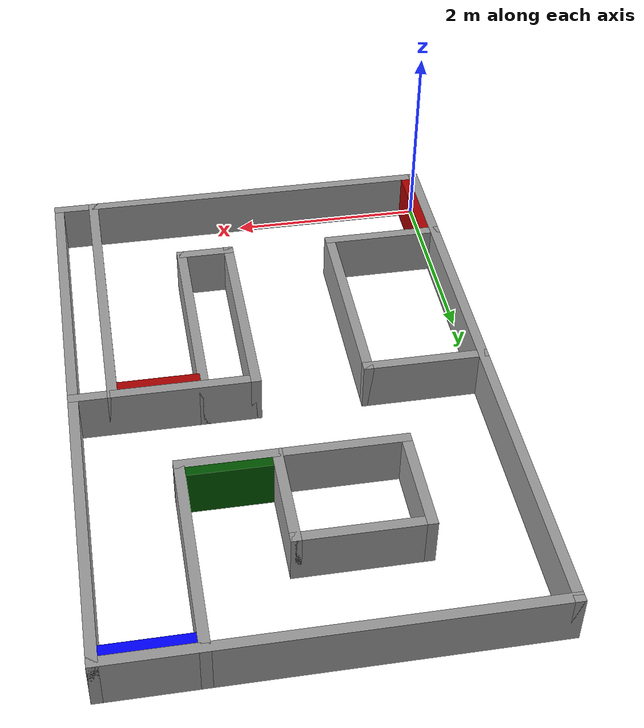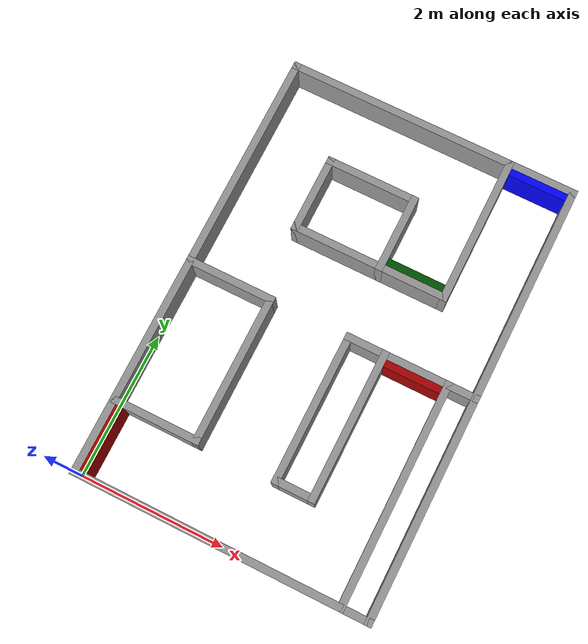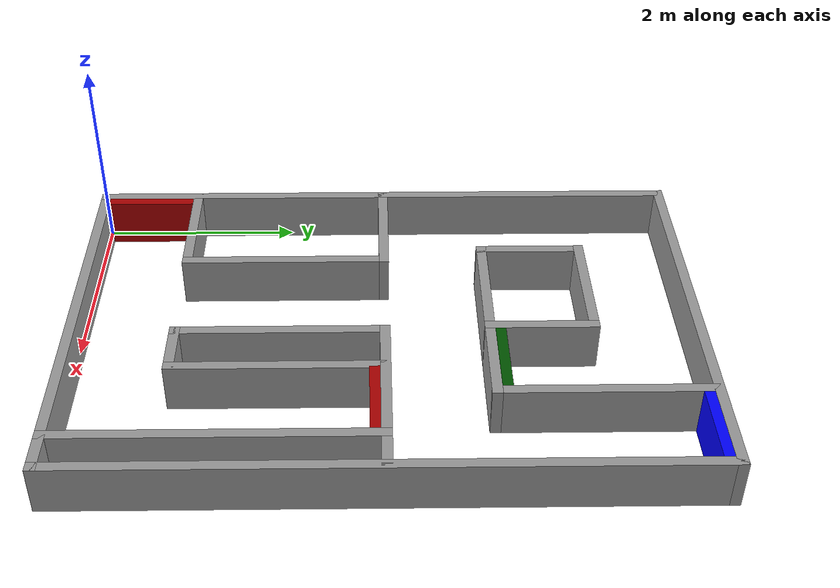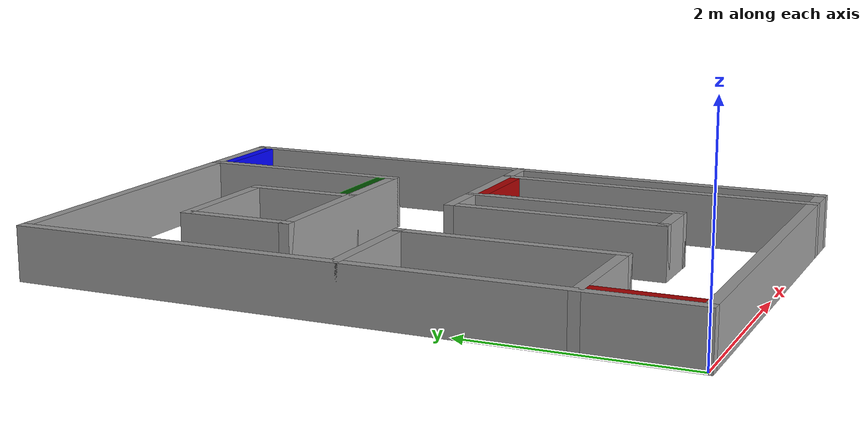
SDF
<?xml version='1.0'?>
<sdf version='1.6'>
  <model name='Bot_Map_2'>
    <pose frame=''>2 3 0 0 -0 0</pose>
    <link name='Wall_103'>
      <collision name='Wall_103_Collision'>
        <geometry>
          <box>
            <size>1.25 0.1 0.5</size>
          </box>
        </geometry>
        <pose frame=''>0 0 0.25 0 -0 0</pose>
      </collision>
      <visual name='Wall_103_Visual'>
        <pose frame=''>0 0 0.25 0 -0 0</pose>
        <geometry>
          <box>
            <size>1.25 0.1 0.5</size>
          </box>
        </geometry>
        <material>
          <script>
            <uri>file://media/materials/scripts/gazebo.material</uri>
            <name>Gazebo/Grey</name>
          </script>
          <ambient>0 0 0 1</ambient>
        </material>
        <meta>
          <layer>0</layer>
        </meta>
      </visual>
      <pose frame=''>-1.425 0 0 0 -0 0</pose>
    </link>
    <link name='Wall_105'>
      <collision name='Wall_105_Collision'>
        <geometry>
          <box>
            <size>1.1 0.1 0.5</size>
          </box>
        </geometry>
        <pose frame=''>0 0 0.25 0 -0 0</pose>
      </collision>
      <visual name='Wall_105_Visual'>
        <pose frame=''>0 0 0.25 0 -0 0</pose>
        <geometry>
          <box>
            <size>1.1 0.1 0.5</size>
          </box>
        </geometry>
        <material>
          <script>
            <uri>file://media/materials/scripts/gazebo.material</uri>
            <name>Gazebo/Grey</name>
          </script>
          <ambient>0 0 0 1</ambient>
        </material>
        <meta>
          <layer>0</layer>
        </meta>
      </visual>
      <pose frame=''>0.2 1.5 0 0 0 -1.5708</pose>
    </link>
    <link name='Wall_107'>
      <collision name='Wall_107_Collision'>
        <geometry>
          <box>
            <size>1.85 0.1 0.5</size>
          </box>
        </geometry>
        <pose frame=''>0 0 0.25 0 -0 0</pose>
      </collision>
      <visual name='Wall_107_Visual'>
        <pose frame=''>0 0 0.25 0 -0 0</pose>
        <geometry>
          <box>
            <size>1.85 0.1 0.5</size>
          </box>
        </geometry>
        <material>
          <script>
            <uri>file://media/materials/scripts/gazebo.material</uri>
            <name>Gazebo/Grey</name>
          </script>
          <ambient>1 1 1 1</ambient>
        </material>
        <meta>
          <layer>0</layer>
        </meta>
      </visual>
      <pose frame=''>1.125 0 0 0 -0 0</pose>
    </link>
    <link name='Wall_109'>
      <collision name='Wall_109_Collision'>
        <geometry>
          <box>
            <size>2.1 0.1 0.5</size>
          </box>
        </geometry>
        <pose frame=''>0 0 0.25 0 -0 0</pose>
      </collision>
      <visual name='Wall_109_Visual'>
        <pose frame=''>0 0 0.25 0 -0 0</pose>
        <geometry>
          <box>
            <size>2.1 0.1 0.5</size>
          </box>
        </geometry>
        <material>
          <script>
            <uri>file://media/materials/scripts/gazebo.material</uri>
            <name>Gazebo/Grey</name>
          </script>
          <ambient>0 0 0 1</ambient>
        </material>
        <meta>
          <layer>0</layer>
        </meta>
      </visual>
      <pose frame=''>0.25 -1 0 0 0 -1.5708</pose>
    </link>
    <link name='Wall_114'>
      <collision name='Wall_114_Collision'>
        <geometry>
          <box>
            <size>3.1 0.1 0.5</size>
          </box>
        </geometry>
        <pose frame=''>0 0 0.25 0 -0 0</pose>
      </collision>
      <visual name='Wall_114_Visual'>
        <pose frame=''>0 0 0.25 0 -0 0</pose>
        <geometry>
          <box>
            <size>3.1 0.1 0.5</size>
          </box>
        </geometry>
        <material>
          <script>
            <uri>file://media/materials/scripts/gazebo.material</uri>
            <name>Gazebo/Grey</name>
          </script>
          <ambient>0 0 0 1</ambient>
        </material>
        <meta>
          <layer>0</layer>
        </meta>
      </visual>
      <pose frame=''>1.625 -1.5 0 0 -0 1.5708</pose>
    </link>
    <link name='Wall_117'>
      <collision name='Wall_117_Collision'>
        <geometry>
          <box>
            <size>2.1 0.1 0.5</size>
          </box>
        </geometry>
        <pose frame=''>0 0 0.25 0 -0 0</pose>
      </collision>
      <visual name='Wall_117_Visual'>
        <pose frame=''>0 0 0.25 0 -0 0</pose>
        <geometry>
          <box>
            <size>2.1 0.1 0.5</size>
          </box>
        </geometry>
        <material>
          <script>
            <uri>file://media/materials/scripts/gazebo.material</uri>
            <name>Gazebo/Grey</name>
          </script>
          <ambient>0 0 0 1</ambient>
        </material>
        <meta>
          <layer>0</layer>
        </meta>
      </visual>
      <pose frame=''>0.75 -1 0 0 -0 1.5708</pose>
    </link>
    <link name='Wall_119'>
      <collision name='Wall_119_Collision'>
        <geometry>
          <box>
            <size>0.575 0.1 0.5</size>
          </box>
        </geometry>
        <pose frame=''>0 0 0.25 0 -0 0</pose>
      </collision>
      <visual name='Wall_119_Visual'>
        <pose frame=''>0 0 0.25 0 -0 0</pose>
        <geometry>
          <box>
            <size>0.575 0.1 0.5</size>
          </box>
        </geometry>
        <material>
          <script>
            <uri>file://media/materials/scripts/gazebo.material</uri>
            <name>Gazebo/Grey</name>
          </script>
          <ambient>0 0 0 1</ambient>
        </material>
        <meta>
          <layer>0</layer>
        </meta>
      </visual>
      <pose frame=''>0.4875 -2 0 0 -0 0</pose>
    </link>
    <link name='Wall_44'>
      <collision name='Wall_44_Collision'>
        <geometry>
          <box>
            <size>6.1 0.1 0.5</size>
          </box>
        </geometry>
        <pose frame=''>0 0 0.25 0 -0 0</pose>
      </collision>
      <visual name='Wall_44_Visual'>
        <pose frame=''>0 0 0.25 0 -0 0</pose>
        <geometry>
          <box>
            <size>6.1 0.1 0.5</size>
          </box>
        </geometry>
        <material>
          <script>
            <uri>file://media/materials/scripts/gazebo.material</uri>
            <name>Gazebo/Grey</name>
          </script>
          <ambient>0 0 0 1</ambient>
        </material>
        <meta>
          <layer>0</layer>
        </meta>
      </visual>
      <pose frame=''>-2 0 0 0 -0 1.5708</pose>
    </link>
    <link name='Wall_50'>
      <collision name='Wall_50_Collision'>
        <geometry>
          <box>
            <size>1.25 0.1 0.5</size>
          </box>
        </geometry>
        <pose frame=''>0 0 0.25 0 -0 0</pose>
      </collision>
      <visual name='Wall_50_Visual'>
        <pose frame=''>0 0 0.25 0 -0 0</pose>
        <geometry>
          <box>
            <size>1.25 0.1 0.5</size>
          </box>
        </geometry>
        <material>
          <script>
            <uri>file://media/materials/scripts/gazebo.material</uri>
            <name>Gazebo/Grey</name>
          </script>
          <ambient>0 0 0 1</ambient>
        </material>
        <meta>
          <layer>0</layer>
        </meta>
      </visual>
      <pose frame=''>-1.425 -2 0 0 -0 0</pose>
    </link>
    <link name='Wall_56'>
      <collision name='Wall_56_Collision'>
        <geometry>
          <box>
            <size>2.1 0.1 0.5</size>
          </box>
        </geometry>
        <pose frame=''>0 0 0.25 0 -0 0</pose>
      </collision>
      <visual name='Wall_56_Visual'>
        <pose frame=''>0 0 0.25 0 -0 0</pose>
        <geometry>
          <box>
            <size>2.1 0.1 0.5</size>
          </box>
        </geometry>
        <material>
          <script>
            <uri>file://media/materials/scripts/gazebo.material</uri>
            <name>Gazebo/Grey</name>
          </script>
          <ambient>0 0 0 1</ambient>
        </material>
        <meta>
          <layer>0</layer>
        </meta>
      </visual>
      <pose frame=''>-0.85 -1 0 0 -0 1.5708</pose>
    </link>
    <link name='Wall_58'>
      <collision name='Wall_58_Collision'>
        <geometry>
          <box>
            <size>4 0.1 0.5</size>
          </box>
        </geometry>
        <pose frame=''>0 0 0.25 0 -0 0</pose>
      </collision>
      <visual name='Wall_58_Visual'>
        <pose frame=''>0 0 0.25 0 -0 0</pose>
        <geometry>
          <box>
            <size>4 0.1 0.5</size>
          </box>
        </geometry>
        <material>
          <script>
            <uri>file://media/materials/scripts/gazebo.material</uri>
            <name>Gazebo/Grey</name>
          </script>
          <ambient>0 0 0 1</ambient>
        </material>
        <meta>
          <layer>0</layer>
        </meta>
      </visual>
      <pose frame=''>0.05 -3 0 0 -0 0</pose>
    </link>
    <link name='Wall_60'>
      <collision name='Wall_60_Collision'>
        <geometry>
          <box>
            <size>6.1 0.1 0.5</size>
          </box>
        </geometry>
        <pose frame=''>0 0 0.25 0 -0 0</pose>
      </collision>
      <visual name='Wall_60_Visual'>
        <pose frame=''>0 0 0.25 0 -0 0</pose>
        <geometry>
          <box>
            <size>6.1 0.1 0.5</size>
          </box>
        </geometry>
        <material>
          <script>
            <uri>file://media/materials/scripts/gazebo.material</uri>
            <name>Gazebo/Grey</name>
          </script>
          <ambient>0 0 0 1</ambient>
        </material>
        <meta>
          <layer>0</layer>
        </meta>
      </visual>
      <pose frame=''>2 0 0 0 -0 1.5708</pose>
    </link>
    <link name='Wall_64'>
      <collision name='Wall_64_Collision'>
        <geometry>
          <box>
            <size>4.1 0.1 0.5</size>
          </box>
        </geometry>
        <pose frame=''>0 0 0.25 0 -0 0</pose>
      </collision>
      <visual name='Wall_64_Visual'>
        <pose frame=''>0 0 0.25 0 -0 0</pose>
        <geometry>
          <box>
            <size>4.1 0.1 0.5</size>
          </box>
        </geometry>
        <material>
          <script>
            <uri>file://media/materials/scripts/gazebo.material</uri>
            <name>Gazebo/Grey</name>
          </script>
          <ambient>0 0 0 1</ambient>
        </material>
        <meta>
          <layer>0</layer>
        </meta>
      </visual>
      <pose frame=''>0 3 0 0 -0 0</pose>
    </link>
    <link name='Wall_66'>
      <collision name='Wall_66_Collision'>
        <geometry>
          <box>
            <size>2.1 0.1 0.5</size>
          </box>
        </geometry>
        <pose frame=''>0 0 0.25 0 -0 0</pose>
      </collision>
      <visual name='Wall_66_Visual'>
        <pose frame=''>0 0 0.25 0 -0 0</pose>
        <geometry>
          <box>
            <size>2.1 0.1 0.5</size>
          </box>
        </geometry>
        <material>
          <script>
            <uri>file://media/materials/scripts/gazebo.material</uri>
            <name>Gazebo/Grey</name>
          </script>
          <ambient>0 0 0 1</ambient>
        </material>
        <meta>
          <layer>0</layer>
        </meta>
      </visual>
      <pose frame=''>1.1 2 0 0 0 -1.5708</pose>
    </link>
    <link name='Wall_68'>
      <collision name='Wall_68_Collision'>
        <geometry>
          <box>
            <size>2.2 0.1 0.5</size>
          </box>
        </geometry>
        <pose frame=''>0 0 0.25 0 -0 0</pose>
      </collision>
      <visual name='Wall_68_Visual'>
        <pose frame=''>0 0 0.25 0 -0 0</pose>
        <geometry>
          <box>
            <size>2.2 0.1 0.5</size>
          </box>
        </geometry>
        <material>
          <script>
            <uri>file://media/materials/scripts/gazebo.material</uri>
            <name>Gazebo/Grey</name>
          </script>
          <ambient>0 0 0 1</ambient>
        </material>
        <meta>
          <layer>0</layer>
        </meta>
      </visual>
      <pose frame=''>0.05 1 0 0 -0 0</pose>
    </link>
    <link name='Wall_70'>
      <collision name='Wall_70_Collision'>
        <geometry>
          <box>
            <size>1.1 0.1 0.5</size>
          </box>
        </geometry>
        <pose frame=''>0 0 0.25 0 -0 0</pose>
      </collision>
      <visual name='Wall_70_Visual'>
        <pose frame=''>0 0 0.25 0 -0 0</pose>
        <geometry>
          <box>
            <size>1.1 0.1 0.5</size>
          </box>
        </geometry>
        <material>
          <script>
            <uri>file://media/materials/scripts/gazebo.material</uri>
            <name>Gazebo/Grey</name>
          </script>
          <ambient>0 0 0 1</ambient>
        </material>
        <meta>
          <layer>0</layer>
        </meta>
      </visual>
      <pose frame=''>-1 1.5 0 0 -0 1.5708</pose>
    </link>
    <link name='Wall_73'>
      <collision name='Wall_73_Collision'>
        <geometry>
          <box>
            <size>1.3 0.1 0.5</size>
          </box>
        </geometry>
        <pose frame=''>0 0 0.25 0 -0 0</pose>
      </collision>
      <visual name='Wall_73_Visual'>
        <pose frame=''>0 0 0.25 0 -0 0</pose>
        <geometry>
          <box>
            <size>1.3 0.1 0.5</size>
          </box>
        </geometry>
        <material>
          <script>
            <uri>file://media/materials/scripts/gazebo.material</uri>
            <name>Gazebo/Grey</name>
          </script>
          <ambient>0 0 0 1</ambient>
        </material>
        <meta>
          <layer>0</layer>
        </meta>
      </visual>
      <pose frame=''>-0.4 2 0 0 -0 0</pose>
    </link>
    <link name='Wall_75'>
      <collision name='Wall_75_Collision'>
        <geometry>
          <box>
            <size>1.3 0.1 0.5</size>
          </box>
        </geometry>
        <pose frame=''>0 0 0.25 0 -0 0</pose>
      </collision>
      <visual name='Wall_75_Visual'>
        <pose frame=''>0 0 0.25 0 -0 0</pose>
        <geometry>
          <box>
            <size>1.3 0.1 0.5</size>
          </box>
        </geometry>
        <material>
          <script>
            <uri>file://media/materials/scripts/gazebo.material</uri>
            <name>Gazebo/Grey</name>
          </script>
          <ambient>0 0 0 1</ambient>
        </material>
        <meta>
          <layer>0</layer>
        </meta>
      </visual>
      <pose frame=''>-0.4 2 0 0 -0 0</pose>
    </link>
    <link name='Wall_77'>
      <collision name='Wall_77_Collision'>
        <geometry>
          <box>
            <size>0.8 0.1 0.5</size>
          </box>
        </geometry>
        <pose frame=''>0 0 0.25 0 -0 0</pose>
      </collision>
      <visual name='Wall_77_Visual'>
        <pose frame=''>0 0 0.25 0 -0 0</pose>
        <geometry>
          <box>
            <size>0.8 0.1 0.5</size>
          </box>
        </geometry>
        <material>
          <script>
            <uri>file://media/materials/scripts/gazebo.material</uri>
            <name>Gazebo/Grey</name>
          </script>
          <ambient>0 0.333333 0 1</ambient>
        </material>
        <meta>
          <layer>0</layer>
        </meta>
      </visual>
      <pose frame=''>0.65 1.1 0 0 -0 0</pose>
    </link>
    <link name='Wall_90'>
      <collision name='Wall_90_Collision'>
        <geometry>
          <box>
            <size>0.9 0.1 0.5</size>
          </box>
        </geometry>
        <pose frame=''>0 0 0.25 0 -0 0</pose>
      </collision>
      <visual name='Wall_90_Visual'>
        <pose frame=''>0 0 0.25 0 -0 0</pose>
        <geometry>
          <box>
            <size>0.9 0.1 0.5</size>
          </box>
        </geometry>
        <material>
          <script>
            <uri>file://media/materials/scripts/gazebo.material</uri>
            <name>Gazebo/Grey</name>
          </script>
          <ambient>0.666667 0 0 1</ambient>
        </material>
        <meta>
          <layer>0</layer>
        </meta>
      </visual>
      <pose frame=''>-1.9 -2.5 0 0 -0 1.5708</pose>
    </link>
    <link name='Wall_92'>
      <collision name='Wall_92_Collision'>
        <geometry>
          <box>
            <size>0.8 0.1 0.5</size>
          </box>
        </geometry>
        <pose frame=''>0 0 0.25 0 -0 0</pose>
      </collision>
      <visual name='Wall_92_Visual'>
        <pose frame=''>0 0 0.25 0 -0 0</pose>
        <geometry>
          <box>
            <size>0.8 0.1 0.5</size>
          </box>
        </geometry>
        <material>
          <script>
            <uri>file://media/materials/scripts/gazebo.material</uri>
            <name>Gazebo/Grey</name>
          </script>
          <ambient>0.666667 0 0 1</ambient>
        </material>
        <meta>
          <layer>0</layer>
        </meta>
      </visual>
      <pose frame=''>1.175 -0.1 0 0 -0 0</pose>
    </link>
    <link name='Wall_96'>
      <collision name='Wall_96_Collision'>
        <geometry>
          <box>
            <size>0.8 0.1 0.5</size>
          </box>
        </geometry>
        <pose frame=''>0 0 0.25 0 -0 0</pose>
      </collision>
      <visual name='Wall_96_Visual'>
        <pose frame=''>0 0 0.25 0 -0 0</pose>
        <geometry>
          <box>
            <size>0.8 0.1 0.5</size>
          </box>
        </geometry>
        <material>
          <script>
            <uri>file://media/materials/scripts/gazebo.material</uri>
            <name>Gazebo/Grey</name>
          </script>
          <ambient>0 0 1 1</ambient>
        </material>
        <meta>
          <layer>0</layer>
        </meta>
      </visual>
      <pose frame=''>1.55 2.9 0 0 -0 0</pose>
    </link>
    <static>1</static>
  </model>
</sdf>
